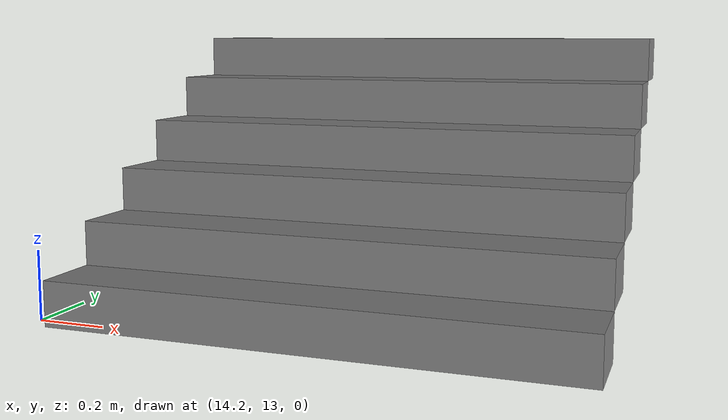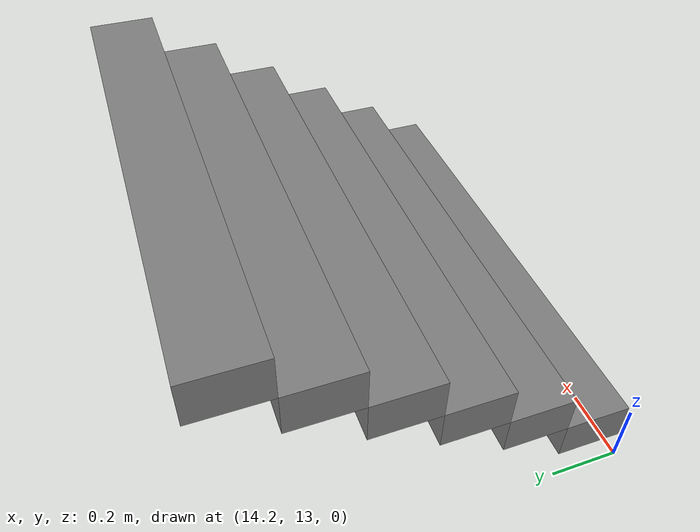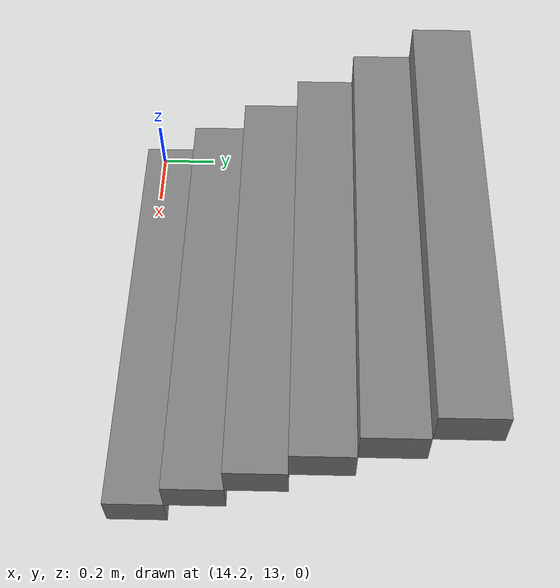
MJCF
<mujoco model="go2 scene">
  <statistic center="0 0 0.1" extent="0.8" />

  <visual>
    <headlight diffuse="0.6 0.6 0.6" ambient="0.3 0.3 0.3" specular="0 0 0" />
    <rgba haze="0.15 0.25 0.35 1" />
    <global azimuth="-130" elevation="-20" />
  </visual>

  <asset>
    <texture type="skybox" builtin="gradient" rgb1="0.3 0.5 0.7" rgb2="0 0 0" width="512" height="3072" />
  </asset>

  <worldbody>
  <geom pos="15.0 13.049999999999999 0.065" type="box" size="0.1 0.75 0.065" quat="0.7071067811865476 0.0 0.0 0.7071067811865475" /><geom pos="15.0 13.25 0.195" type="box" size="0.1 0.75 0.065" quat="0.7071067811865476 0.0 0.0 0.7071067811865475" /><geom pos="15.0 13.45 0.325" type="box" size="0.1 0.75 0.065" quat="0.7071067811865476 0.0 0.0 0.7071067811865475" /><geom pos="15.0 13.65 0.455" type="box" size="0.1 0.75 0.065" quat="0.7071067811865476 0.0 0.0 0.7071067811865475" /><geom pos="15.0 13.85 0.585" type="box" size="0.1 0.75 0.065" quat="0.7071067811865476 0.0 0.0 0.7071067811865475" /><geom pos="15.0 14.049999999999999 0.7149999999999999" type="box" size="0.1 0.75 0.065" quat="0.7071067811865476 0.0 0.0 0.7071067811865475" /></worldbody>
</mujoco>
